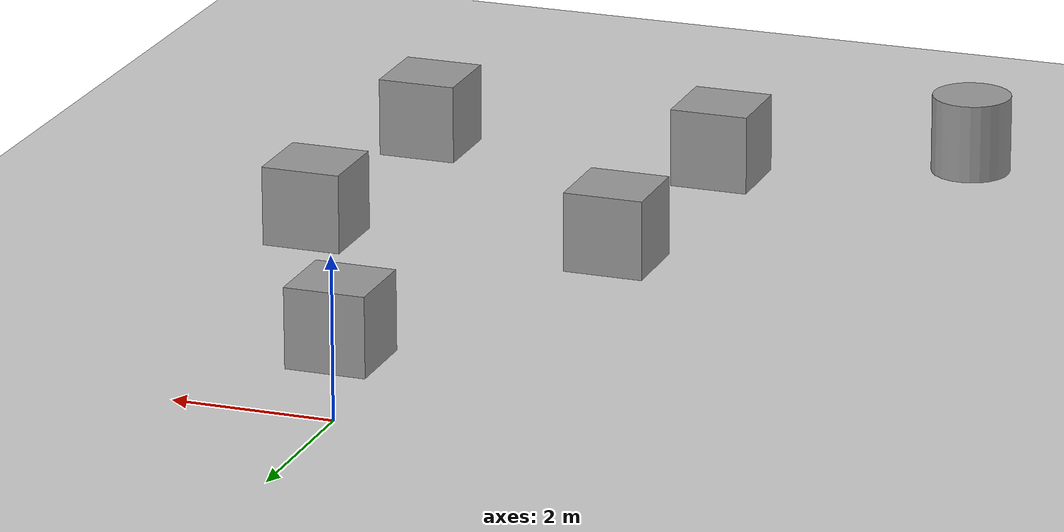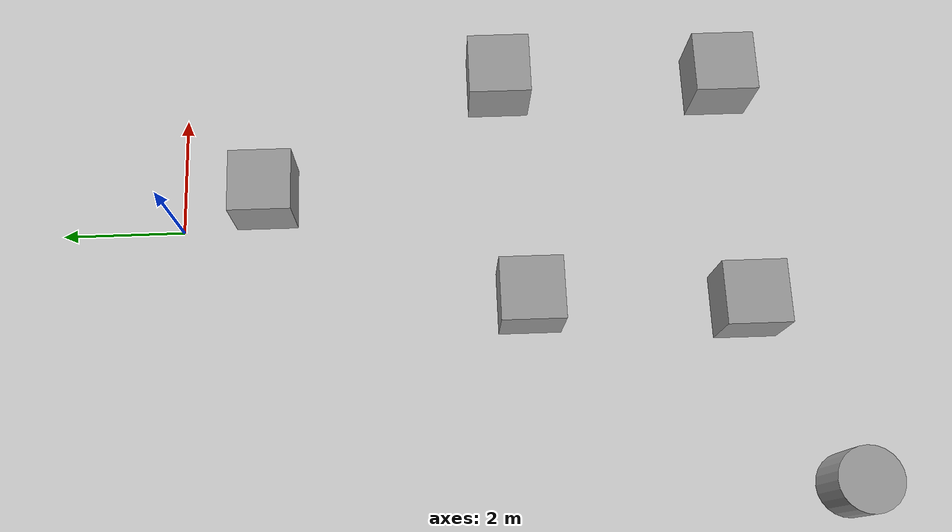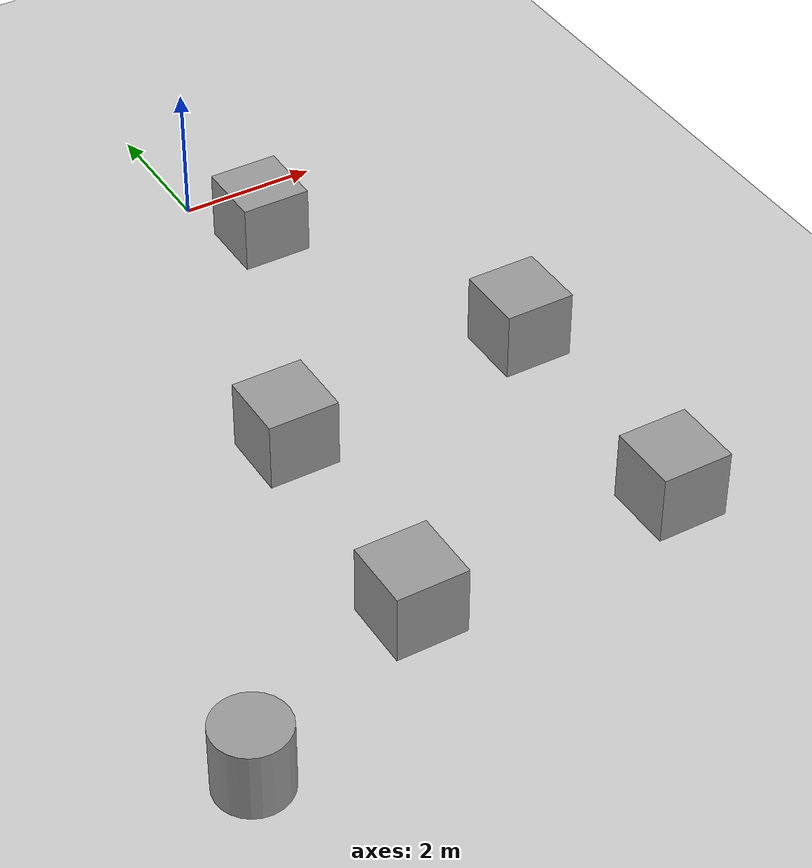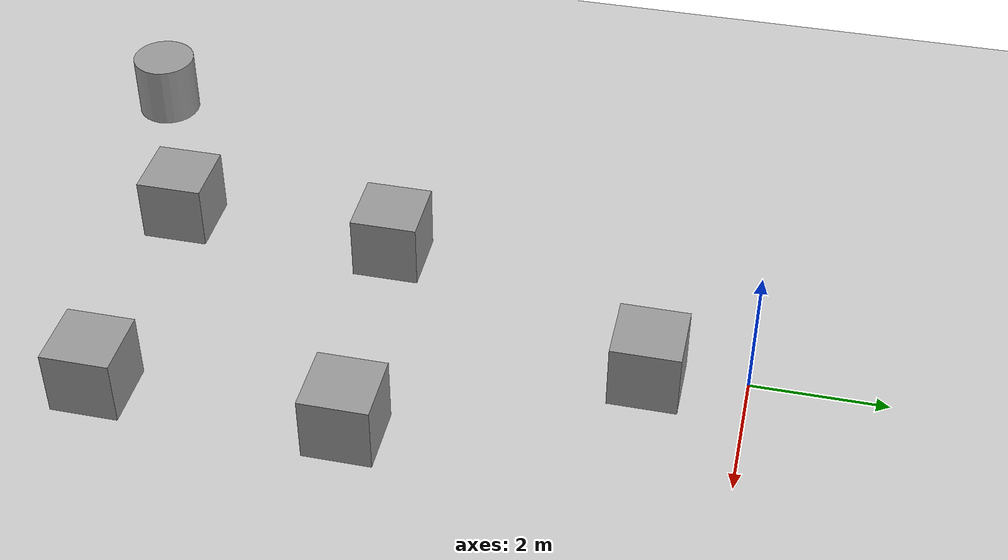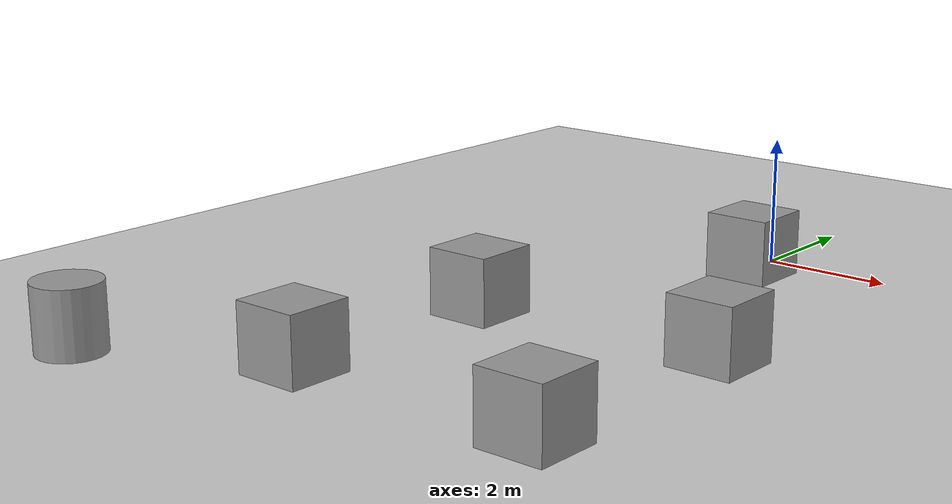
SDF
<sdf version="1.6">
 <world name="default">
  <light name="sun" type="directional">
   <pose>0 0 10 0 -0 0</pose>
   <diffuse>0.8 0.8 0.8 1</diffuse>
   <specular>0.2 0.2 0.2 1</specular>
   <attenuation>
    <range>1000</range>
    <constant>0.9</constant>
    <linear>0.01</linear>
    <quadratic>0.001</quadratic>
   </attenuation>
   <direction>0 0.5 -0.9</direction>
  </light>
  <light name="point_light" type="point">
   <pose>0 -0.377195 6.59868 0 -0 0</pose>
   <diffuse>0.784314 0.784314 0.784314 1</diffuse>
   <specular>0.0980392 0.0980392 0.0980392 1</specular>
   <attenuation>
    <range>50</range>
    <constant>0.8</constant>
    <linear>0</linear>
    <quadratic>0.001</quadratic>
   </attenuation>
   <cast_shadows>0</cast_shadows>
   <direction>0 0 -1</direction>
  </light>
  <model name="ground_plane">
   <static>1</static>
   <link name="link">
    <collision name="collision">
     <geometry><plane><normal>0 0 1</normal><size>100 100</size></plane></geometry>
     <surface>
      <contact><collide_bitmask>65535</collide_bitmask></contact>
      <friction><ode><mu>100</mu><mu2>50</mu2></ode></friction>
     </surface>
    </collision>
    <visual name="visual">
     <cast_shadows>0</cast_shadows>
     <geometry><plane><normal>0 0 1</normal><size>100 100</size></plane></geometry>
     <material>
      <script><uri>file://media/materials/scripts/gazebo.material</uri><name>Gazebo/Grey</name></script>
     </material>
    </visual>
   </link>
  </model>
  <model name="human_94763_collision_model">
   <static>true</static>
   <link name="link">
    <collision name="link"><geometry><box><size>0.44 1.62 0.60</size></box></geometry></collision>
   </link>
  </model>
  <model name="human_114514_collision_model">
   <static>true</static>
   <link name="link">
    <collision name="link"><geometry><box><size>0.44 1.62 0.60</size></box></geometry></collision>
   </link>
  </model>
  <gravity>0 0 -9.8</gravity>
  <magnetic_field>6e-06 2.3e-05 -4.2e-05</magnetic_field>
  <atmosphere type="adiabatic"/>
  <physics name="default_physics" default="0" type="ode">
   <max_step_size>0.001</max_step_size>
   <real_time_factor>1</real_time_factor>
   <real_time_update_rate>1000</real_time_update_rate>
  </physics>
  <scene><ambient>0.4 0.4 0.4 1</ambient><background>0.7 0.7 0.7 1</background><shadows>1</shadows></scene>
  <spherical_coordinates>
   <surface_model>EARTH_WGS84</surface_model>
   <latitude_deg>0</latitude_deg>
   <longitude_deg>0</longitude_deg>
   <elevation>0</elevation>
   <heading_deg>0</heading_deg>
  </spherical_coordinates>
  <model name="unit_box">
   <pose>0.475641 -1.40803 0.6898 -0 -0 -0</pose>
   <link name="link">
    <inertial>
     <mass>1</mass>
     <inertia>
      <ixx>0.166667</ixx>
      <ixy>0</ixy>
      <ixz>0</ixz>
      <iyy>0.166667</iyy>
      <iyz>0</iyz>
      <izz>0.166667</izz>
     </inertia>
    </inertial>
    <collision name="collision"><geometry><box><size>1 1 1</size></box></geometry></collision>
    <visual name="visual">
     <geometry><box><size>1 1 1</size></box></geometry>
     <material>
      <script><name>Gazebo/Grey</name><uri>file://media/materials/scripts/gazebo.material</uri></script>
     </material>
    </visual>
   </link>
  </model>
  <model name="unit_box_0">
   <pose>2.35683 -5.27545 0.6898 -0 -0 -0</pose>
   <link name="link">
    <inertial>
     <mass>1</mass>
     <inertia>
      <ixx>0.166667</ixx>
      <ixy>0</ixy>
      <ixz>0</ixz>
      <iyy>0.166667</iyy>
      <iyz>0</iyz>
      <izz>0.166667</izz>
     </inertia>
    </inertial>
    <collision name="collision"><geometry><box><size>1 1 1</size></box></geometry></collision>
    <visual name="visual">
     <geometry><box><size>1 1 1</size></box></geometry>
     <material>
      <script><name>Gazebo/Grey</name><uri>file://media/materials/scripts/gazebo.material</uri></script>
     </material>
    </visual>
   </link>
  </model>
  <model name="unit_box_1">
   <pose>2.27528 -8.94224 0.6898 -0 -0 -0</pose>
   <link name="link">
    <inertial>
     <mass>1</mass>
     <inertia>
      <ixx>0.166667</ixx>
      <ixy>0</ixy>
      <ixz>0</ixz>
      <iyy>0.166667</iyy>
      <iyz>0</iyz>
      <izz>0.166667</izz>
     </inertia>
    </inertial>
    <collision name="collision"><geometry><box><size>1 1 1</size></box></geometry></collision>
    <visual name="visual">
     <geometry><box><size>1 1 1</size></box></geometry>
     <material>
      <script><name>Gazebo/Grey</name><uri>file://media/materials/scripts/gazebo.material</uri></script>
     </material>
    </visual>
   </link>
  </model>
  <model name="unit_box_2">
   <pose>-1.42056 -5.61491 0.6898 -0 -0 -0</pose>
   <link name="link">
    <inertial>
     <mass>1</mass>
     <inertia>
      <ixx>0.166667</ixx>
      <ixy>0</ixy>
      <ixz>0</ixz>
      <iyy>0.166667</iyy>
      <iyz>0</iyz>
      <izz>0.166667</izz>
     </inertia>
    </inertial>
    <collision name="collision"><geometry><box><size>1 1 1</size></box></geometry></collision>
    <visual name="visual">
     <geometry><box><size>1 1 1</size></box></geometry>
     <material>
      <script><name>Gazebo/Grey</name><uri>file://media/materials/scripts/gazebo.material</uri></script>
     </material>
    </visual>
   </link>
  </model>
  <model name="unit_box_3">
   <pose>-1.59528 -9.04306 0.6898 -0 -0 -0</pose>
   <link name="link">
    <inertial>
     <mass>1</mass>
     <inertia>
      <ixx>0.166667</ixx>
      <ixy>0</ixy>
      <ixz>0</ixz>
      <iyy>0.166667</iyy>
      <iyz>0</iyz>
      <izz>0.166667</izz>
     </inertia>
    </inertial>
    <collision name="collision"><geometry><box><size>1 1 1</size></box></geometry></collision>
    <visual name="visual">
     <geometry><box><size>1 1 1</size></box></geometry>
     <material>
      <script><name>Gazebo/Grey</name><uri>file://media/materials/scripts/gazebo.material</uri></script>
     </material>
    </visual>
   </link>
  </model>
  <model name="unit_cylinder">
   <pose>-4.46938 -10.3814 0.689802 -2e-06 3e-06 -0.002821</pose>
   <link name="link">
    <inertial>
     <mass>1</mass>
     <inertia><ixx>0.145833</ixx><ixy>0</ixy><ixz>0</ixz><iyy>0.145833</iyy><iyz>0</iyz><izz>0.125</izz></inertia>
    </inertial>
    <collision name="collision">
     <geometry><cylinder><radius>0.5</radius><length>1</length></cylinder></geometry>
    </collision>
    <visual name="visual">
     <geometry><cylinder><radius>0.5</radius><length>1</length></cylinder></geometry>
     <material>
      <script><name>Gazebo/Grey</name><uri>file://media/materials/scripts/gazebo.material</uri></script>
     </material>
    </visual>
   </link>
  </model>
 </world>
</sdf>
